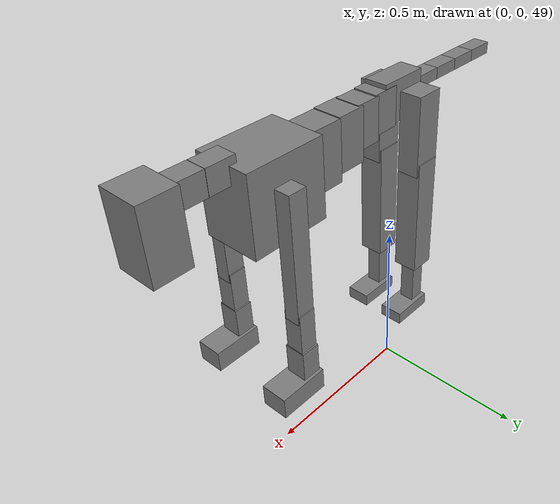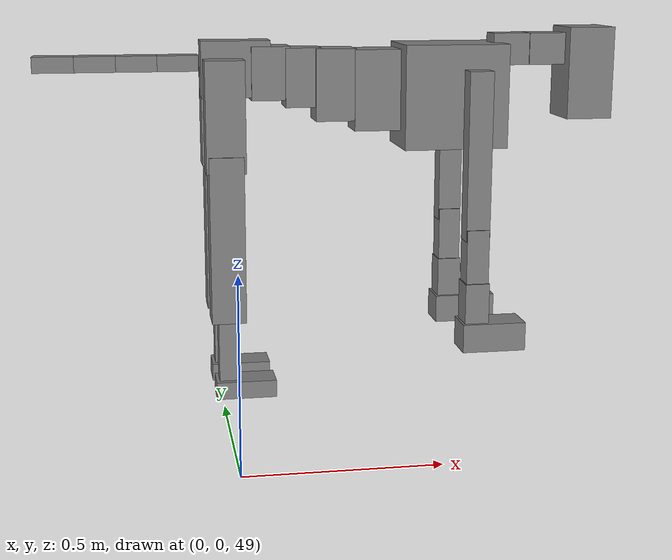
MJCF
<mujoco model="dog">

    <default>
        <joint armature="0.02" stiffness="1" damping="0.2" limited="true"/>
        <geom condim="3" friction="1 0.05 0.05" margin="0.01"/>
        <motor ctrllimited="true" ctrlrange="-1.0 1.0" forcelimited="true" gear="50"/>
    </default>

    <compiler inertiafromgeom="true" angle="radian"/>

    <option timestep="0.016" iterations="50" tolerance="1e-10" solver="Newton" jacobian="dense" cone="pyramidal"/>

    <size nconmax="20000" njmax="60000" nstack="5000000"/>
    <visual>
        <map force="0.1" zfar="30"/>
        <rgba haze="0.15 0.25 0.35 1"/>
        <quality shadowsize="2048"/>
        <global offwidth="800" offheight="800"/>
    </visual>

    <asset>
        <texture type="skybox" builtin="gradient" rgb1="0.3 0.5 0.7" rgb2="0 0 0" width="512" height="512"/>
        <texture name="texplane" type="2d" builtin="checker" rgb1=".2 .3 .4" rgb2=".1 0.15 0.2" width="512" height="512"
                 mark="cross" markrgb=".8 .8 .8"/>
        <texture name="texgeom" type="cube" builtin="flat" mark="cross" width="127" height="1278" rgb1="0.8 0.6 0.4"
                 rgb2="0.8 0.6 0.4" markrgb="1 1 1" random="0.01"/>

        <material name="matplane" reflectance="0.3" texture="texplane" texrepeat="1 1" texuniform="true"/>
        <material name="matgeom" texture="texgeom" texuniform="true" rgba="0.8 0.6 .4 1"/>
    </asset>

    <worldbody>
        <geom name="floor" pos="0 0 0" size="0 0 .25" type="plane" material="matplane" condim="3"/>

        <light directional="false" diffuse=".2 .2 .2" specular="0 0 0" pos="0 0 5" dir="0 0 -1" castshadow="false"/>
        <light mode="targetbodycom" target="torso" directional="false" diffuse=".8 .8 .8" specular="0.3 0.3 0.3"
               pos="0 0 4.0" dir="0 0 -1"/>

        <body name="root" pos="0 0 50">
            <freejoint name="root_1"/>
            <geom type="box" pos="0 0 -0.02" size="0.0774  0.0358  0.063" density="2030"/>

            <body name="spine1" pos="0.054 0 0">
                <joint name="spine1_y" axis="0 1 0" range="0 0.7" limited="true"/>
                <geom type="box" pos="0.02375 0 -0.03" size="0.04375  0.0375  0.05985" density="2030"/>

                <body name="spine2" pos="0.0612 0 0">
                    <joint name="spine2_y" axis="0 1 0" range="-0.15 0.15" limited="true"/>
                    <geom type="box" pos="0.03555  0  -0.04" size="0.04055  0.039  0.06615" density="2030"/>

                    <body name="spine3" pos="0.0730 0 0">
                        <joint name="spine3_y" axis="0 1 0" range="-0.15 0.15" limited="true"/>
                        <geom type="box" pos="0.03555  0  -0.057" size="0.04555  0.0445  0.081" density="2030"/>

                        <body name="spine4" pos="0.0780 0 0">
                            <joint name="spine4_y" axis="0 1 0" range="-0.15 0.15" limited="true"/>
                            <geom type="box" pos="0.05265  0  -0.07" size="0.05265  0.045  0.09135" density="2030"/>

                            <body name="torso" pos="0.1082 0 0">
                                <joint name="torso_y" axis="0 1 0" range="-0.15 0.15" limited="true"/>
                                <geom type="box" pos="0.11925  0  -0.085" size="0.11925  0.085  0.11745"
                                      density="2030"/>

                                <body name="neck1" pos="0.2160  0   0.0180">
                                    <joint name="neck1_y" axis="0 1 0" range="-1.2  -1" limited="true"/>
                                    <geom type="box" pos="0.0423  0  0" size="0.0423  0.03  0.036" density="2325"/>

                                    <body name="neck2" pos="0.0853  0  0">
                                        <joint name="neck2_y" axis="0 1 0" range="0.1  0" limited="true"/>
                                        <geom type="box" pos="0.0423  0  0" size="0.0423  0.03  0.036" density="2325"/>

                                        <body name="head" pos="0.0853  0  0">
                                            <joint name="head_y" axis="0 1 0" range="-0.3  -0.2" limited="true"/>
                                            <geom type="box" pos="0.0531  0  -0.055" size="0.0531  0.06  0.1044"
                                                  density="4030"/>

                                        </body>
                                    </body>
                                </body>

                                <body name="front_shoulder" pos="0.156  0   -0.0480">
                                    <joint name="front_shoulder_y" axis="0 1 0" range="-1 1.5" limited="true"/>
                                    <geom type="box" pos="0 0.13 -0.1645" size="0.0271  0.0231  0.1911" density="1158"/>
                                    <geom type="box" pos="0 -0.13 -0.1645" size="0.0271  0.0231  0.1911"
                                          density="1158"/>

                                    <body name="front_elbow" pos="0  0  -0.3289">
                                        <joint name="front_elbow_y" axis="0 1 0" range="-2 0" limited="true"/>
                                        <geom type="box" pos="0 0.13 -0.0684" size="0.0258  0.0264  0.0684"
                                              density="1081"/>
                                        <geom type="box" pos="0 -0.13 -0.0684" size="0.0258  0.0264  0.0684"
                                              density="1081"/>

                                        <body name="front_wrist" pos="0  0  -0.1369">
                                            <joint name="front_wrist_y" axis="0 1 0" range="-0.2 0" limited="true"/>
                                            <geom type="box" pos="0 0.13 -0.0471" size="0.0277  0.0307  0.0603"
                                                  density="1664"/>
                                            <geom type="box" pos="0 -0.13 -0.0471" size="0.0277  0.0307  0.0603"
                                                  density="1664"/>

                                            <body name="front_finger_end" pos="0  0  -0.0943">
                                                <joint name="front_finger_y" axis="0 1 0" range="-0.4 1"
                                                       limited="true"/>
                                                <geom type="box" pos="0.0398  0.13  -0.0177"
                                                      size="0.0729  0.0398  0.0327" density="1515"/>
                                                <geom type="box" pos="0.0398  -0.13  -0.0177"
                                                      size="0.0729  0.0398  0.0327" density="1515"/>

                                            </body>

                                        </body>
                                    </body>
                                </body>

                            </body>
                        </body>
                    </body>
                </body>
            </body>

            <body name="back_hip" pos="-0.03 0 -0.018">
                <joint name="back_hip_y" axis="0 1 0" range="-1.5 0.3" limited="true"/>
                <geom type="box" pos="0 0.07 -0.1015" size="0.0440  0.0345  0.1243" density="1154"/>
                <geom type="box" pos="0 -0.07 -0.1015" size="0.0440  0.0345  0.1243" density="1154"/>

                <body name="back_knee" pos="0  0  -0.2031">
                    <joint name="back_knee_y" axis="0 1 0" range="0 2.8" limited="true"/>
                    <geom type="box" pos="0 0.07 -0.1732" size="0.0389  0.0383  0.1888" density="1227"/>
                    <geom type="box" pos="0 -0.07 -0.1732" size="0.0389  0.0383  0.1888" density="1227"/>

                    <body name="back_ankle" pos="0  0  -0.3464">
                        <joint name="back_ankle_y" axis="0 1 0" range="-2.2 0" limited="true"/>
                        <geom type="box" pos="0 0.07 -0.0847" size="0.0233  0.0233  0.0959" density="1284"/>
                        <geom type="box" pos="0 -0.07 -0.0847" size="0.0233  0.0233  0.0959" density="1284"/>

                        <body name="back_toe_end" pos="0  0  -0.1694">
                            <joint name="back_toe_y" axis="0 1 0" range="-0.4 1" limited="true"/>
                            <geom type="box" pos="0.0372  0.07  -0.0048" size="0.0682  0.0372  0.0198" density="1515"/>
                            <geom type="box" pos="0.0372  -0.07  -0.0048" size="0.0682  0.0372  0.0198" density="1515"/>

                        </body>
                    </body>
                </body>
            </body>

            <body name="tail1" pos="-0.074 0 -0.006">
                <joint name="tail1_y" axis="0 1 0" range="-0.2 0.2" limited="true"/>
                <geom type="box" pos="-0.0536  0  0" size="0.045  0.025  0.0175" density="1587"/>

                <body name="tail2" pos="-0.09 0 0">
                    <joint name="tail2_y" axis="0 1 0" range="-0.2 0.2" limited="true"/>
                    <geom type="box" pos="-0.0536  0  0" size="0.045  0.025  0.0175" density="1587"/>

                    <body name="tail3" pos="-0.09 0 0">
                        <joint name="tail3_y" axis="0 1 0" range="-0.2 0.2" limited="true"/>
                        <geom type="box" pos="-0.0536  0  0" size="0.045  0.025  0.0175" density="1587"/>

                        <body name="tail4" pos="-0.09 0 0">
                            <joint name="tail4_y" axis="0 1 0" range="-0.2 0.2" limited="true"/>
                            <geom type="box" pos="-0.0536  0  0" size="0.045  0.025  0.0175" density="1587"/>

                        </body>
                    </body>
                </body>
            </body>
        </body>
    </worldbody>

    <actuator>
        <motor joint="spine1_y" forcerange="-150 150     "/>
        <motor joint="spine2_y" forcerange="-150 150     "/>
        <motor joint="spine3_y" forcerange="-150 150     "/>
        <motor joint="spine4_y" forcerange="-150 150     "/>
        <motor joint="torso_y" forcerange="-150 150     "/>
        <motor joint="neck1_y" forcerange="-100 100       "/>
        <motor joint="neck2_y" forcerange="-100 100       "/>
        <motor joint="head_y" forcerange="-150 150       "/>
        <motor joint="front_shoulder_y" forcerange="-119.64 134.49"/>
        <motor joint="front_elbow_y" forcerange="-169.20 122.97"/>
        <motor joint="front_wrist_y" forcerange="-130.87 114.95"/>
        <motor joint="front_finger_y" forcerange="-90.29 81.71"/>
        <motor joint="back_hip_y" forcerange="-312.87 347.02"/>
        <motor joint="back_knee_y" forcerange="-391.87 365.36"/>
        <motor joint="back_angle_y" forcerange="-123.28 149.50"/>
        <motor joint="back_toe_y" forcerange="-114.15 103.56"/>
        <motor joint="tail1_y" forcerange="-50 50     "/>
        <motor joint="tail2_y" forcerange="-50 50     "/>
        <motor joint="tail3_y" forcerange="-50 50     "/>
        <motor joint="tail4_y" forcerange="-50 50     "/>
    </actuator>
</mujoco>
